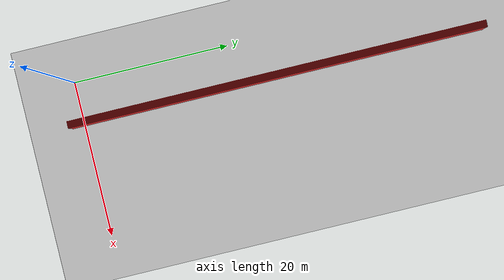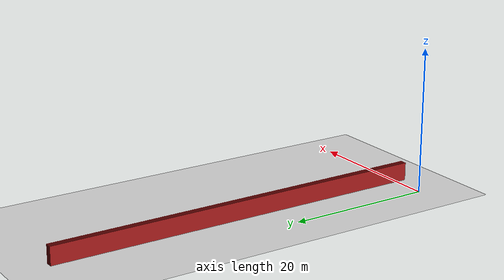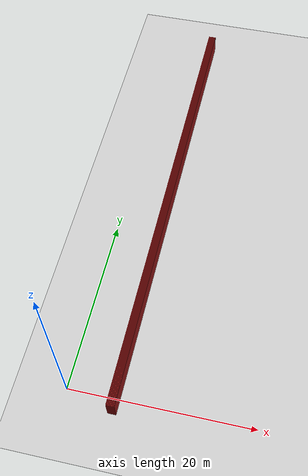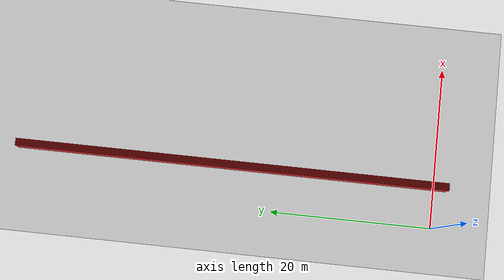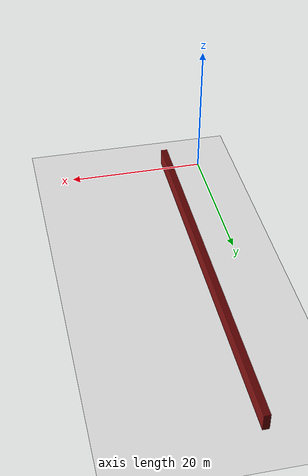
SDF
<sdf version="1.4">
 <world name="1_wall">
  <model name="ground_plane">
   <static>1</static>
   <link name="link">
    <collision name="collision">
     <geometry><plane><normal>0 0 1</normal><size>1000 1000</size></plane></geometry>
     <surface><friction><ode><mu>100</mu><mu2>50</mu2></ode></friction></surface>
    </collision>
    <visual name="visual">
     <cast_shadows>0</cast_shadows>
     <geometry><plane><normal>0 0 1</normal><size>10000 10000</size></plane></geometry>
     <material>
      <script><uri>file://media/materials/scripts/gazebo.material</uri><name>Gazebo/Grey</name></script>
     </material>
    </visual>
    <velocity_decay><linear>0</linear><angular>0</angular></velocity_decay>
   </link>
  </model>
  <model name="Wall_126">
   <static>1</static>
   <link name="Wall_126">
    <collision name="Wall_Collision_126">
     <geometry><box><size>53.65 0.05 2.5</size></box></geometry>
     <pose>0 0 1.25 0 -0 0</pose>
    </collision>
    <visual name="Wall_Visual_126">
     <pose>0 0 1.25 0 -0 0</pose>
     <geometry><box><size>53.65 0.05 2.5</size></box></geometry>
     <material>
      <script><uri>file://media/materials/scripts/gazebo.material</uri><name>Gazebo/Red</name></script>
     </material>
    </visual>
    <velocity_decay><linear>0</linear><angular>0</angular></velocity_decay>
    <pose>4.8 25.3 0 0 0 1.5707963267948966</pose>
   </link>
  </model>
  <model name="Wall_127">
   <static>1</static>
   <link name="Wall_127">
    <collision name="Wall_Collision_127">
     <geometry><box><size>53.65 0.05 2.5</size></box></geometry>
     <pose>0 0 1.25 0 -0 0</pose>
    </collision>
    <visual name="Wall_Visual_127">
     <pose>0 0 1.25 0 -0 0</pose>
     <geometry><box><size>53.65 0.05 2.5</size></box></geometry>
     <material>
      <script><uri>file://media/materials/scripts/gazebo.material</uri><name>Gazebo/Red</name></script>
     </material>
    </visual>
    <velocity_decay><linear>0</linear><angular>0</angular></velocity_decay>
    <pose>4.85 25.3 0 0 0 1.5707963267948966</pose>
   </link>
  </model>
  <model name="Wall_128">
   <static>1</static>
   <link name="Wall_128">
    <collision name="Wall_Collision_128">
     <geometry><box><size>53.65 0.05 2.5</size></box></geometry>
     <pose>0 0 1.25 0 -0 0</pose>
    </collision>
    <visual name="Wall_Visual_128">
     <pose>0 0 1.25 0 -0 0</pose>
     <geometry><box><size>53.65 0.05 2.5</size></box></geometry>
     <material>
      <script><uri>file://media/materials/scripts/gazebo.material</uri><name>Gazebo/Red</name></script>
     </material>
    </visual>
    <velocity_decay><linear>0</linear><angular>0</angular></velocity_decay>
    <pose>4.9 25.3 0 0 0 1.5707963267948966</pose>
   </link>
  </model>
  <model name="Wall_129">
   <static>1</static>
   <link name="Wall_129">
    <collision name="Wall_Collision_129">
     <geometry><box><size>53.65 0.05 2.5</size></box></geometry>
     <pose>0 0 1.25 0 -0 0</pose>
    </collision>
    <visual name="Wall_Visual_129">
     <pose>0 0 1.25 0 -0 0</pose>
     <geometry><box><size>53.65 0.05 2.5</size></box></geometry>
     <material>
      <script><uri>file://media/materials/scripts/gazebo.material</uri><name>Gazebo/Red</name></script>
     </material>
    </visual>
    <velocity_decay><linear>0</linear><angular>0</angular></velocity_decay>
    <pose>4.95 25.3 0 0 0 1.5707963267948966</pose>
   </link>
  </model>
  <model name="Wall_130">
   <static>1</static>
   <link name="Wall_130">
    <collision name="Wall_Collision_130">
     <geometry><box><size>53.65 0.05 2.5</size></box></geometry>
     <pose>0 0 1.25 0 -0 0</pose>
    </collision>
    <visual name="Wall_Visual_130">
     <pose>0 0 1.25 0 -0 0</pose>
     <geometry><box><size>53.65 0.05 2.5</size></box></geometry>
     <material>
      <script><uri>file://media/materials/scripts/gazebo.material</uri><name>Gazebo/Red</name></script>
     </material>
    </visual>
    <velocity_decay><linear>0</linear><angular>0</angular></velocity_decay>
    <pose>5.0 25.3 0 0 0 1.5707963267948966</pose>
   </link>
  </model>
  <model name="Wall_131">
   <static>1</static>
   <link name="Wall_131">
    <collision name="Wall_Collision_131">
     <geometry><box><size>53.65 0.05 2.5</size></box></geometry>
     <pose>0 0 1.25 0 -0 0</pose>
    </collision>
    <visual name="Wall_Visual_131">
     <pose>0 0 1.25 0 -0 0</pose>
     <geometry><box><size>53.65 0.05 2.5</size></box></geometry>
     <material>
      <script><uri>file://media/materials/scripts/gazebo.material</uri><name>Gazebo/Red</name></script>
     </material>
    </visual>
    <velocity_decay><linear>0</linear><angular>0</angular></velocity_decay>
    <pose>5.05 25.3 0 0 0 1.5707963267948966</pose>
   </link>
  </model>
  <model name="Wall_132">
   <static>1</static>
   <link name="Wall_132">
    <collision name="Wall_Collision_132">
     <geometry><box><size>53.65 0.05 2.5</size></box></geometry>
     <pose>0 0 1.25 0 -0 0</pose>
    </collision>
    <visual name="Wall_Visual_132">
     <pose>0 0 1.25 0 -0 0</pose>
     <geometry><box><size>53.65 0.05 2.5</size></box></geometry>
     <material>
      <script><uri>file://media/materials/scripts/gazebo.material</uri><name>Gazebo/Red</name></script>
     </material>
    </visual>
    <velocity_decay><linear>0</linear><angular>0</angular></velocity_decay>
    <pose>5.1 25.3 0 0 0 1.5707963267948966</pose>
   </link>
  </model>
  <model name="Wall_133">
   <static>1</static>
   <link name="Wall_133">
    <collision name="Wall_Collision_133">
     <geometry><box><size>53.65 0.05 2.5</size></box></geometry>
     <pose>0 0 1.25 0 -0 0</pose>
    </collision>
    <visual name="Wall_Visual_133">
     <pose>0 0 1.25 0 -0 0</pose>
     <geometry><box><size>53.65 0.05 2.5</size></box></geometry>
     <material>
      <script><uri>file://media/materials/scripts/gazebo.material</uri><name>Gazebo/Red</name></script>
     </material>
    </visual>
    <velocity_decay><linear>0</linear><angular>0</angular></velocity_decay>
    <pose>5.15 25.3 0 0 0 1.5707963267948966</pose>
   </link>
  </model>
  <model name="Wall_134">
   <static>1</static>
   <link name="Wall_134">
    <collision name="Wall_Collision_134">
     <geometry><box><size>53.65 0.05 2.5</size></box></geometry>
     <pose>0 0 1.25 0 -0 0</pose>
    </collision>
    <visual name="Wall_Visual_134">
     <pose>0 0 1.25 0 -0 0</pose>
     <geometry><box><size>53.65 0.05 2.5</size></box></geometry>
     <material>
      <script><uri>file://media/materials/scripts/gazebo.material</uri><name>Gazebo/Red</name></script>
     </material>
    </visual>
    <velocity_decay><linear>0</linear><angular>0</angular></velocity_decay>
    <pose>5.2 25.3 0 0 0 1.5707963267948966</pose>
   </link>
  </model>
  <model name="Wall_135">
   <static>1</static>
   <link name="Wall_135">
    <collision name="Wall_Collision_135">
     <geometry><box><size>53.65 0.05 2.5</size></box></geometry>
     <pose>0 0 1.25 0 -0 0</pose>
    </collision>
    <visual name="Wall_Visual_135">
     <pose>0 0 1.25 0 -0 0</pose>
     <geometry><box><size>53.65 0.05 2.5</size></box></geometry>
     <material>
      <script><uri>file://media/materials/scripts/gazebo.material</uri><name>Gazebo/Red</name></script>
     </material>
    </visual>
    <velocity_decay><linear>0</linear><angular>0</angular></velocity_decay>
    <pose>5.25 25.3 0 0 0 1.5707963267948966</pose>
   </link>
  </model>
  <model name="Wall_136">
   <static>1</static>
   <link name="Wall_136">
    <collision name="Wall_Collision_136">
     <geometry><box><size>53.65 0.05 2.5</size></box></geometry>
     <pose>0 0 1.25 0 -0 0</pose>
    </collision>
    <visual name="Wall_Visual_136">
     <pose>0 0 1.25 0 -0 0</pose>
     <geometry><box><size>53.65 0.05 2.5</size></box></geometry>
     <material>
      <script><uri>file://media/materials/scripts/gazebo.material</uri><name>Gazebo/Red</name></script>
     </material>
    </visual>
    <velocity_decay><linear>0</linear><angular>0</angular></velocity_decay>
    <pose>5.3 25.3 0 0 0 1.5707963267948966</pose>
   </link>
  </model>
  <model name="Wall_137">
   <static>1</static>
   <link name="Wall_137">
    <collision name="Wall_Collision_137">
     <geometry><box><size>53.65 0.05 2.5</size></box></geometry>
     <pose>0 0 1.25 0 -0 0</pose>
    </collision>
    <visual name="Wall_Visual_137">
     <pose>0 0 1.25 0 -0 0</pose>
     <geometry><box><size>53.65 0.05 2.5</size></box></geometry>
     <material>
      <script><uri>file://media/materials/scripts/gazebo.material</uri><name>Gazebo/Red</name></script>
     </material>
    </visual>
    <velocity_decay><linear>0</linear><angular>0</angular></velocity_decay>
    <pose>5.35 25.3 0 0 0 1.5707963267948966</pose>
   </link>
  </model>
  <model name="Wall_138">
   <static>1</static>
   <link name="Wall_138">
    <collision name="Wall_Collision_138">
     <geometry><box><size>53.65 0.05 2.5</size></box></geometry>
     <pose>0 0 1.25 0 -0 0</pose>
    </collision>
    <visual name="Wall_Visual_138">
     <pose>0 0 1.25 0 -0 0</pose>
     <geometry><box><size>53.65 0.05 2.5</size></box></geometry>
     <material>
      <script><uri>file://media/materials/scripts/gazebo.material</uri><name>Gazebo/Red</name></script>
     </material>
    </visual>
    <velocity_decay><linear>0</linear><angular>0</angular></velocity_decay>
    <pose>5.4 25.3 0 0 0 1.5707963267948966</pose>
   </link>
  </model>
  <model name="Wall_139">
   <static>1</static>
   <link name="Wall_139">
    <collision name="Wall_Collision_139">
     <geometry><box><size>53.65 0.05 2.5</size></box></geometry>
     <pose>0 0 1.25 0 -0 0</pose>
    </collision>
    <visual name="Wall_Visual_139">
     <pose>0 0 1.25 0 -0 0</pose>
     <geometry><box><size>53.65 0.05 2.5</size></box></geometry>
     <material>
      <script><uri>file://media/materials/scripts/gazebo.material</uri><name>Gazebo/Red</name></script>
     </material>
    </visual>
    <velocity_decay><linear>0</linear><angular>0</angular></velocity_decay>
    <pose>5.45 25.3 0 0 0 1.5707963267948966</pose>
   </link>
  </model>
  <model name="Wall_140">
   <static>1</static>
   <link name="Wall_140">
    <collision name="Wall_Collision_140">
     <geometry><box><size>53.65 0.05 2.5</size></box></geometry>
     <pose>0 0 1.25 0 -0 0</pose>
    </collision>
    <visual name="Wall_Visual_140">
     <pose>0 0 1.25 0 -0 0</pose>
     <geometry><box><size>53.65 0.05 2.5</size></box></geometry>
     <material>
      <script><uri>file://media/materials/scripts/gazebo.material</uri><name>Gazebo/Red</name></script>
     </material>
    </visual>
    <velocity_decay><linear>0</linear><angular>0</angular></velocity_decay>
    <pose>5.5 25.3 0 0 0 1.5707963267948966</pose>
   </link>
  </model>
  <model name="Wall_141">
   <static>1</static>
   <link name="Wall_141">
    <collision name="Wall_Collision_141">
     <geometry><box><size>53.65 0.05 2.5</size></box></geometry>
     <pose>0 0 1.25 0 -0 0</pose>
    </collision>
    <visual name="Wall_Visual_141">
     <pose>0 0 1.25 0 -0 0</pose>
     <geometry><box><size>53.65 0.05 2.5</size></box></geometry>
     <material>
      <script><uri>file://media/materials/scripts/gazebo.material</uri><name>Gazebo/Red</name></script>
     </material>
    </visual>
    <velocity_decay><linear>0</linear><angular>0</angular></velocity_decay>
    <pose>5.55 25.3 0 0 0 1.5707963267948966</pose>
   </link>
  </model>
  <model name="Wall_142">
   <static>1</static>
   <link name="Wall_142">
    <collision name="Wall_Collision_142">
     <geometry><box><size>53.65 0.05 2.5</size></box></geometry>
     <pose>0 0 1.25 0 -0 0</pose>
    </collision>
    <visual name="Wall_Visual_142">
     <pose>0 0 1.25 0 -0 0</pose>
     <geometry><box><size>53.65 0.05 2.5</size></box></geometry>
     <material>
      <script><uri>file://media/materials/scripts/gazebo.material</uri><name>Gazebo/Red</name></script>
     </material>
    </visual>
    <velocity_decay><linear>0</linear><angular>0</angular></velocity_decay>
    <pose>5.6 25.3 0 0 0 1.5707963267948966</pose>
   </link>
  </model>
  <model name="Wall_143">
   <static>1</static>
   <link name="Wall_143">
    <collision name="Wall_Collision_143">
     <geometry><box><size>53.65 0.05 2.5</size></box></geometry>
     <pose>0 0 1.25 0 -0 0</pose>
    </collision>
    <visual name="Wall_Visual_143">
     <pose>0 0 1.25 0 -0 0</pose>
     <geometry><box><size>53.65 0.05 2.5</size></box></geometry>
     <material>
      <script><uri>file://media/materials/scripts/gazebo.material</uri><name>Gazebo/Red</name></script>
     </material>
    </visual>
    <velocity_decay><linear>0</linear><angular>0</angular></velocity_decay>
    <pose>5.65 25.3 0 0 0 1.5707963267948966</pose>
   </link>
  </model>
 </world>
</sdf>
